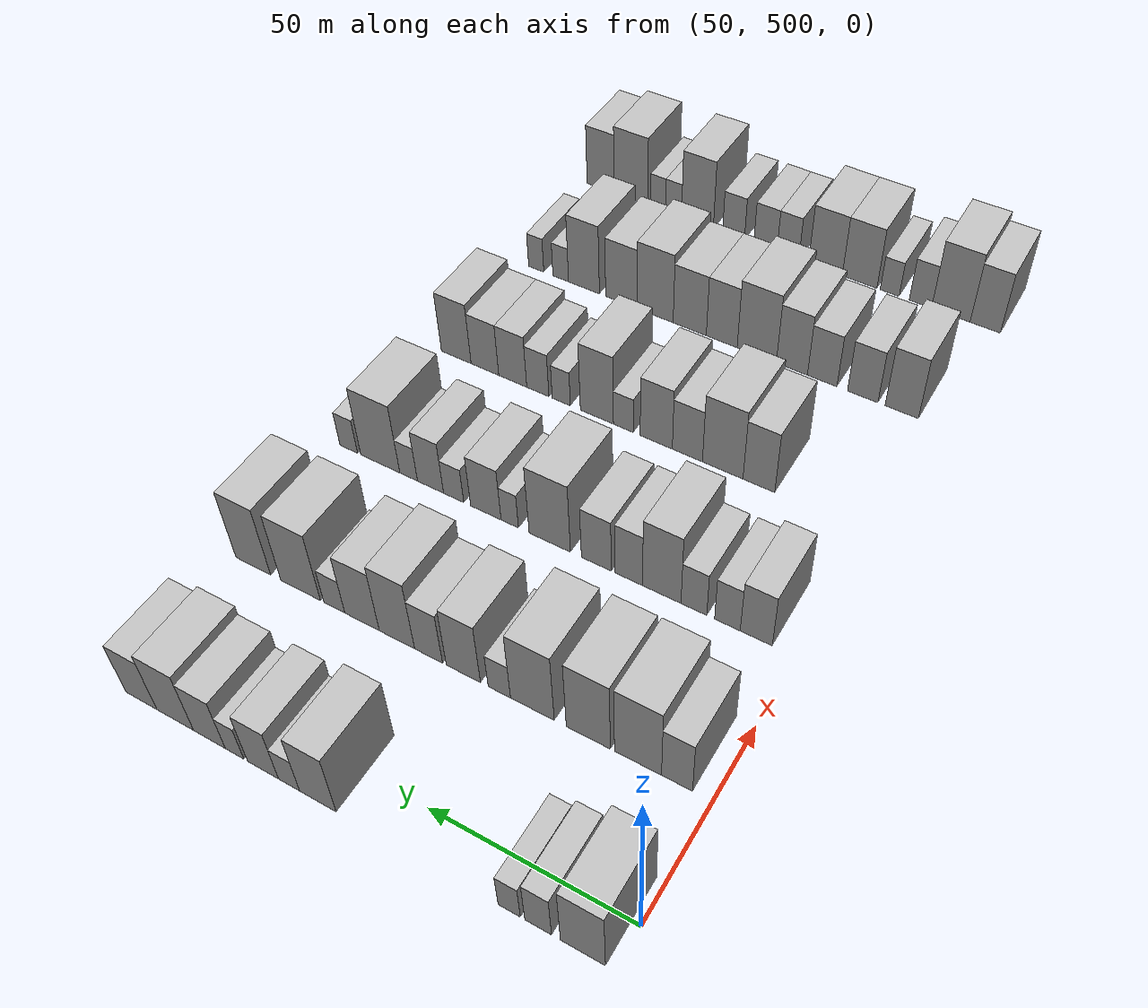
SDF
<sdf version="1.6">
 <world name="default">
  <model name="building_119">
   <static>1</static>
   <pose>50.0000 507.1689 0 0.000000 0.000000 0.000000</pose>
   <link name="link">
    <pose>0 0 10.50 0 0 0</pose>
    <collision name="collision"><geometry><box><size>20.0000 9.9891 21.0000</size></box></geometry></collision>
    <visual name="visual">
     <cast_shadows>0</cast_shadows>
     <geometry><box><size>20.0000 9.9891 21.0000</size></box></geometry>
     <material>
      <script>
       <uri>model://HANNAS_wall/materials/scripts</uri>
       <uri>model://HANNAS_wall/materials/textures</uri>
       <name>vrc/HANNAS_wall</name>
      </script>
     </material>
    </visual>
   </link>
  </model>
  <model name="building_120">
   <static>1</static>
   <pose>50.0000 517.1993 0 0.000000 0.000000 0.000000</pose>
   <link name="link">
    <pose>0 0 7.50 0 0 0</pose>
    <collision name="collision"><geometry><box><size>20.0000 6.0717 15.0000</size></box></geometry></collision>
    <visual name="visual">
     <cast_shadows>0</cast_shadows>
     <geometry><box><size>20.0000 6.0717 15.0000</size></box></geometry>
     <material>
      <script>
       <uri>model://HANNAS_wall/materials/scripts</uri>
       <uri>model://HANNAS_wall/materials/textures</uri>
       <name>vrc/HANNAS_wall</name>
      </script>
     </material>
    </visual>
   </link>
  </model>
  <model name="building_121">
   <static>1</static>
   <pose>50.0000 523.8039 0 0.000000 0.000000 0.000000</pose>
   <link name="link">
    <pose>0 0 6.00 0 0 0</pose>
    <collision name="collision"><geometry><box><size>20.0000 5.1374 12.0000</size></box></geometry></collision>
    <visual name="visual">
     <cast_shadows>0</cast_shadows>
     <geometry><box><size>20.0000 5.1374 12.0000</size></box></geometry>
     <material>
      <script>
       <uri>model://HANNAS_wall/materials/scripts</uri>
       <uri>model://HANNAS_wall/materials/textures</uri>
       <name>vrc/HANNAS_wall</name>
      </script>
     </material>
    </visual>
   </link>
  </model>
  <model name="building_122">
   <static>1</static>
   <pose>50.0000 570.4702 0 0.000000 0.000000 0.000000</pose>
   <link name="link">
    <pose>0 0 10.50 0 0 0</pose>
    <collision name="collision"><geometry><box><size>20.0000 9.3984 21.0000</size></box></geometry></collision>
    <visual name="visual">
     <cast_shadows>0</cast_shadows>
     <geometry><box><size>20.0000 9.3984 21.0000</size></box></geometry>
     <material>
      <script>
       <uri>model://HANNAS_wall/materials/scripts</uri>
       <uri>model://HANNAS_wall/materials/textures</uri>
       <name>vrc/HANNAS_wall</name>
      </script>
     </material>
    </visual>
   </link>
  </model>
  <model name="building_123">
   <static>1</static>
   <pose>50.0000 577.9317 0 0.000000 0.000000 0.000000</pose>
   <link name="link">
    <pose>0 0 6.00 0 0 0</pose>
    <collision name="collision"><geometry><box><size>20.0000 5.5246 12.0000</size></box></geometry></collision>
    <visual name="visual">
     <cast_shadows>0</cast_shadows>
     <geometry><box><size>20.0000 5.5246 12.0000</size></box></geometry>
     <material>
      <script>
       <uri>model://HANNAS_wall/materials/scripts</uri>
       <uri>model://HANNAS_wall/materials/textures</uri>
       <name>vrc/HANNAS_wall</name>
      </script>
     </material>
    </visual>
   </link>
  </model>
  <model name="building_124">
   <static>1</static>
   <pose>50.0000 584.7952 0 0.000000 0.000000 0.000000</pose>
   <link name="link">
    <pose>0 0 9.00 0 0 0</pose>
    <collision name="collision"><geometry><box><size>20.0000 8.2024 18.0000</size></box></geometry></collision>
    <visual name="visual">
     <cast_shadows>0</cast_shadows>
     <geometry><box><size>20.0000 8.2024 18.0000</size></box></geometry>
     <material>
      <script>
       <uri>model://HANNAS_wall/materials/scripts</uri>
       <uri>model://HANNAS_wall/materials/textures</uri>
       <name>vrc/HANNAS_wall</name>
      </script>
     </material>
    </visual>
   </link>
  </model>
  <model name="building_125">
   <static>1</static>
   <pose>50.0000 592.4026 0 0.000000 0.000000 0.000000</pose>
   <link name="link">
    <pose>0 0 6.00 0 0 0</pose>
    <collision name="collision"><geometry><box><size>20.0000 5.0125 12.0000</size></box></geometry></collision>
    <visual name="visual">
     <cast_shadows>0</cast_shadows>
     <geometry><box><size>20.0000 5.0125 12.0000</size></box></geometry>
     <material>
      <script>
       <uri>model://HANNAS_wall/materials/scripts</uri>
       <uri>model://HANNAS_wall/materials/textures</uri>
       <name>vrc/HANNAS_wall</name>
      </script>
     </material>
    </visual>
   </link>
  </model>
  <model name="building_126">
   <static>1</static>
   <pose>50.0000 599.2550 0 0.000000 0.000000 0.000000</pose>
   <link name="link">
    <pose>0 0 9.00 0 0 0</pose>
    <collision name="collision"><geometry><box><size>20.0000 8.6923 18.0000</size></box></geometry></collision>
    <visual name="visual">
     <cast_shadows>0</cast_shadows>
     <geometry><box><size>20.0000 8.6923 18.0000</size></box></geometry>
     <material>
      <script>
       <uri>model://HANNAS_wall/materials/scripts</uri>
       <uri>model://HANNAS_wall/materials/textures</uri>
       <name>vrc/HANNAS_wall</name>
      </script>
     </material>
    </visual>
   </link>
  </model>
  <model name="building_127">
   <static>1</static>
   <pose>50.0000 608.7537 0 0.000000 0.000000 0.000000</pose>
   <link name="link">
    <pose>0 0 10.50 0 0 0</pose>
    <collision name="collision"><geometry><box><size>20.0000 10.3051 21.0000</size></box></geometry></collision>
    <visual name="visual">
     <cast_shadows>0</cast_shadows>
     <geometry><box><size>20.0000 10.3051 21.0000</size></box></geometry>
     <material>
      <script>
       <uri>model://HANNAS_wall/materials/scripts</uri>
       <uri>model://HANNAS_wall/materials/textures</uri>
       <name>vrc/HANNAS_wall</name>
      </script>
     </material>
    </visual>
   </link>
  </model>
  <model name="building_128">
   <static>1</static>
   <pose>50.0000 618.3585 0 0.000000 0.000000 0.000000</pose>
   <link name="link">
    <pose>0 0 9.00 0 0 0</pose>
    <collision name="collision"><geometry><box><size>20.0000 8.9045 18.0000</size></box></geometry></collision>
    <visual name="visual">
     <cast_shadows>0</cast_shadows>
     <geometry><box><size>20.0000 8.9045 18.0000</size></box></geometry>
     <material>
      <script>
       <uri>model://HANNAS_wall/materials/scripts</uri>
       <uri>model://HANNAS_wall/materials/textures</uri>
       <name>vrc/HANNAS_wall</name>
      </script>
     </material>
    </visual>
   </link>
  </model>
  <model name="building_253">
   <static>1</static>
   <pose>90.0000 508.3896 0 0.000000 0.000000 0.000000</pose>
   <link name="link">
    <pose>0 0 9.00 0 0 0</pose>
    <collision name="collision"><geometry><box><size>20.0000 7.3123 18.0000</size></box></geometry></collision>
    <visual name="visual">
     <cast_shadows>0</cast_shadows>
     <geometry><box><size>20.0000 7.3123 18.0000</size></box></geometry>
     <material>
      <script>
       <uri>model://HANNAS_wall/materials/scripts</uri>
       <uri>model://HANNAS_wall/materials/textures</uri>
       <name>vrc/HANNAS_wall</name>
      </script>
     </material>
    </visual>
   </link>
  </model>
  <model name="building_254">
   <static>1</static>
   <pose>90.0000 517.6811 0 0.000000 0.000000 0.000000</pose>
   <link name="link">
    <pose>0 0 12.00 0 0 0</pose>
    <collision name="collision"><geometry><box><size>20.0000 11.2708 24.0000</size></box></geometry></collision>
    <visual name="visual">
     <cast_shadows>0</cast_shadows>
     <geometry><box><size>20.0000 11.2708 24.0000</size></box></geometry>
     <material>
      <script>
       <uri>model://HANNAS_wall/materials/scripts</uri>
       <uri>model://HANNAS_wall/materials/textures</uri>
       <name>vrc/HANNAS_wall</name>
      </script>
     </material>
    </visual>
   </link>
  </model>
  <model name="building_255">
   <static>1</static>
   <pose>90.0000 529.7607 0 0.000000 0.000000 0.000000</pose>
   <link name="link">
    <pose>0 0 12.00 0 0 0</pose>
    <collision name="collision"><geometry><box><size>20.0000 10.8884 24.0000</size></box></geometry></collision>
    <visual name="visual">
     <cast_shadows>0</cast_shadows>
     <geometry><box><size>20.0000 10.8884 24.0000</size></box></geometry>
     <material>
      <script>
       <uri>model://HANNAS_wall/materials/scripts</uri>
       <uri>model://HANNAS_wall/materials/textures</uri>
       <name>vrc/HANNAS_wall</name>
      </script>
     </material>
    </visual>
   </link>
  </model>
  <model name="building_256">
   <static>1</static>
   <pose>90.0000 543.7618 0 0.000000 0.000000 0.000000</pose>
   <link name="link">
    <pose>0 0 12.00 0 0 0</pose>
    <collision name="collision"><geometry><box><size>20.0000 11.1137 24.0000</size></box></geometry></collision>
    <visual name="visual">
     <cast_shadows>0</cast_shadows>
     <geometry><box><size>20.0000 11.1137 24.0000</size></box></geometry>
     <material>
      <script>
       <uri>model://HANNAS_wall/materials/scripts</uri>
       <uri>model://HANNAS_wall/materials/textures</uri>
       <name>vrc/HANNAS_wall</name>
      </script>
     </material>
    </visual>
   </link>
  </model>
  <model name="building_257">
   <static>1</static>
   <pose>90.0000 552.2125 0 0.000000 0.000000 0.000000</pose>
   <link name="link">
    <pose>0 0 6.00 0 0 0</pose>
    <collision name="collision"><geometry><box><size>20.0000 5.7877 12.0000</size></box></geometry></collision>
    <visual name="visual">
     <cast_shadows>0</cast_shadows>
     <geometry><box><size>20.0000 5.7877 12.0000</size></box></geometry>
     <material>
      <script>
       <uri>model://HANNAS_wall/materials/scripts</uri>
       <uri>model://HANNAS_wall/materials/textures</uri>
       <name>vrc/HANNAS_wall</name>
      </script>
     </material>
    </visual>
   </link>
  </model>
  <model name="building_258">
   <static>1</static>
   <pose>90.0000 561.6182 0 0.000000 0.000000 0.000000</pose>
   <link name="link">
    <pose>0 0 10.50 0 0 0</pose>
    <collision name="collision"><geometry><box><size>20.0000 9.0238 21.0000</size></box></geometry></collision>
    <visual name="visual">
     <cast_shadows>0</cast_shadows>
     <geometry><box><size>20.0000 9.0238 21.0000</size></box></geometry>
     <material>
      <script>
       <uri>model://HANNAS_wall/materials/scripts</uri>
       <uri>model://HANNAS_wall/materials/textures</uri>
       <name>vrc/HANNAS_wall</name>
      </script>
     </material>
    </visual>
   </link>
  </model>
  <model name="building_259">
   <static>1</static>
   <pose>90.0000 570.8936 0 0.000000 0.000000 0.000000</pose>
   <link name="link">
    <pose>0 0 9.00 0 0 0</pose>
    <collision name="collision"><geometry><box><size>20.0000 7.5270 18.0000</size></box></geometry></collision>
    <visual name="visual">
     <cast_shadows>0</cast_shadows>
     <geometry><box><size>20.0000 7.5270 18.0000</size></box></geometry>
     <material>
      <script>
       <uri>model://HANNAS_wall/materials/scripts</uri>
       <uri>model://HANNAS_wall/materials/textures</uri>
       <name>vrc/HANNAS_wall</name>
      </script>
     </material>
    </visual>
   </link>
  </model>
  <model name="building_260">
   <static>1</static>
   <pose>90.0000 579.4934 0 0.000000 0.000000 0.000000</pose>
   <link name="link">
    <pose>0 0 12.00 0 0 0</pose>
    <collision name="collision"><geometry><box><size>20.0000 9.6727 24.0000</size></box></geometry></collision>
    <visual name="visual">
     <cast_shadows>0</cast_shadows>
     <geometry><box><size>20.0000 9.6727 24.0000</size></box></geometry>
     <material>
      <script>
       <uri>model://HANNAS_wall/materials/scripts</uri>
       <uri>model://HANNAS_wall/materials/textures</uri>
       <name>vrc/HANNAS_wall</name>
      </script>
     </material>
    </visual>
   </link>
  </model>
  <model name="building_261">
   <static>1</static>
   <pose>90.0000 589.1586 0 0.000000 0.000000 0.000000</pose>
   <link name="link">
    <pose>0 0 10.50 0 0 0</pose>
    <collision name="collision"><geometry><box><size>20.0000 9.6575 21.0000</size></box></geometry></collision>
    <visual name="visual">
     <cast_shadows>0</cast_shadows>
     <geometry><box><size>20.0000 9.6575 21.0000</size></box></geometry>
     <material>
      <script>
       <uri>model://HANNAS_wall/materials/scripts</uri>
       <uri>model://HANNAS_wall/materials/textures</uri>
       <name>vrc/HANNAS_wall</name>
      </script>
     </material>
    </visual>
   </link>
  </model>
  <model name="building_262">
   <static>1</static>
   <pose>90.0000 596.9618 0 0.000000 0.000000 0.000000</pose>
   <link name="link">
    <pose>0 0 6.00 0 0 0</pose>
    <collision name="collision"><geometry><box><size>20.0000 5.9489 12.0000</size></box></geometry></collision>
    <visual name="visual">
     <cast_shadows>0</cast_shadows>
     <geometry><box><size>20.0000 5.9489 12.0000</size></box></geometry>
     <material>
      <script>
       <uri>model://HANNAS_wall/materials/scripts</uri>
       <uri>model://HANNAS_wall/materials/textures</uri>
       <name>vrc/HANNAS_wall</name>
      </script>
     </material>
    </visual>
   </link>
  </model>
  <model name="building_263">
   <static>1</static>
   <pose>90.0000 606.6613 0 0.000000 0.000000 0.000000</pose>
   <link name="link">
    <pose>0 0 12.00 0 0 0</pose>
    <collision name="collision"><geometry><box><size>20.0000 11.4503 24.0000</size></box></geometry></collision>
    <visual name="visual">
     <cast_shadows>0</cast_shadows>
     <geometry><box><size>20.0000 11.4503 24.0000</size></box></geometry>
     <material>
      <script>
       <uri>model://HANNAS_wall/materials/scripts</uri>
       <uri>model://HANNAS_wall/materials/textures</uri>
       <name>vrc/HANNAS_wall</name>
      </script>
     </material>
    </visual>
   </link>
  </model>
  <model name="building_264">
   <static>1</static>
   <pose>90.0000 620.5556 0 0.000000 0.000000 0.000000</pose>
   <link name="link">
    <pose>0 0 12.00 0 0 0</pose>
    <collision name="collision"><geometry><box><size>20.0000 10.3382 24.0000</size></box></geometry></collision>
    <visual name="visual">
     <cast_shadows>0</cast_shadows>
     <geometry><box><size>20.0000 10.3382 24.0000</size></box></geometry>
     <material>
      <script>
       <uri>model://HANNAS_wall/materials/scripts</uri>
       <uri>model://HANNAS_wall/materials/textures</uri>
       <name>vrc/HANNAS_wall</name>
      </script>
     </material>
    </visual>
   </link>
  </model>
  <model name="building_385">
   <static>1</static>
   <pose>130.0000 509.8401 0 0.000000 0.000000 0.000000</pose>
   <link name="link">
    <pose>0 0 9.00 0 0 0</pose>
    <collision name="collision"><geometry><box><size>20.0000 7.9883 18.0000</size></box></geometry></collision>
    <visual name="visual">
     <cast_shadows>0</cast_shadows>
     <geometry><box><size>20.0000 7.9883 18.0000</size></box></geometry>
     <material>
      <script>
       <uri>model://HANNAS_wall/materials/scripts</uri>
       <uri>model://HANNAS_wall/materials/textures</uri>
       <name>vrc/HANNAS_wall</name>
      </script>
     </material>
    </visual>
   </link>
  </model>
  <model name="building_386">
   <static>1</static>
   <pose>130.0000 517.0669 0 0.000000 0.000000 0.000000</pose>
   <link name="link">
    <pose>0 0 7.50 0 0 0</pose>
    <collision name="collision"><geometry><box><size>20.0000 6.4651 15.0000</size></box></geometry></collision>
    <visual name="visual">
     <cast_shadows>0</cast_shadows>
     <geometry><box><size>20.0000 6.4651 15.0000</size></box></geometry>
     <material>
      <script>
       <uri>model://HANNAS_wall/materials/scripts</uri>
       <uri>model://HANNAS_wall/materials/textures</uri>
       <name>vrc/HANNAS_wall</name>
      </script>
     </material>
    </visual>
   </link>
  </model>
  <model name="building_387">
   <static>1</static>
   <pose>130.0000 525.6155 0 0.000000 0.000000 0.000000</pose>
   <link name="link">
    <pose>0 0 7.50 0 0 0</pose>
    <collision name="collision"><geometry><box><size>20.0000 6.6322 15.0000</size></box></geometry></collision>
    <visual name="visual">
     <cast_shadows>0</cast_shadows>
     <geometry><box><size>20.0000 6.6322 15.0000</size></box></geometry>
     <material>
      <script>
       <uri>model://HANNAS_wall/materials/scripts</uri>
       <uri>model://HANNAS_wall/materials/textures</uri>
       <name>vrc/HANNAS_wall</name>
      </script>
     </material>
    </visual>
   </link>
  </model>
  <model name="building_388">
   <static>1</static>
   <pose>130.0000 533.9509 0 0.000000 0.000000 0.000000</pose>
   <link name="link">
    <pose>0 0 12.00 0 0 0</pose>
    <collision name="collision"><geometry><box><size>20.0000 10.0386 24.0000</size></box></geometry></collision>
    <visual name="visual">
     <cast_shadows>0</cast_shadows>
     <geometry><box><size>20.0000 10.0386 24.0000</size></box></geometry>
     <material>
      <script>
       <uri>model://HANNAS_wall/materials/scripts</uri>
       <uri>model://HANNAS_wall/materials/textures</uri>
       <name>vrc/HANNAS_wall</name>
      </script>
     </material>
    </visual>
   </link>
  </model>
  <model name="building_389">
   <static>1</static>
   <pose>130.0000 542.6285 0 0.000000 0.000000 0.000000</pose>
   <link name="link">
    <pose>0 0 9.00 0 0 0</pose>
    <collision name="collision"><geometry><box><size>20.0000 7.3164 18.0000</size></box></geometry></collision>
    <visual name="visual">
     <cast_shadows>0</cast_shadows>
     <geometry><box><size>20.0000 7.3164 18.0000</size></box></geometry>
     <material>
      <script>
       <uri>model://HANNAS_wall/materials/scripts</uri>
       <uri>model://HANNAS_wall/materials/textures</uri>
       <name>vrc/HANNAS_wall</name>
      </script>
     </material>
    </visual>
   </link>
  </model>
  <model name="building_390">
   <static>1</static>
   <pose>130.0000 551.3390 0 0.000000 0.000000 0.000000</pose>
   <link name="link">
    <pose>0 0 9.00 0 0 0</pose>
    <collision name="collision"><geometry><box><size>20.0000 8.1047 18.0000</size></box></geometry></collision>
    <visual name="visual">
     <cast_shadows>0</cast_shadows>
     <geometry><box><size>20.0000 8.1047 18.0000</size></box></geometry>
     <material>
      <script>
       <uri>model://HANNAS_wall/materials/scripts</uri>
       <uri>model://HANNAS_wall/materials/textures</uri>
       <name>vrc/HANNAS_wall</name>
      </script>
     </material>
    </visual>
   </link>
  </model>
  <model name="building_391">
   <static>1</static>
   <pose>130.0000 564.1221 0 0.000000 0.000000 0.000000</pose>
   <link name="link">
    <pose>0 0 12.00 0 0 0</pose>
    <collision name="collision"><geometry><box><size>20.0000 11.4614 24.0000</size></box></geometry></collision>
    <visual name="visual">
     <cast_shadows>0</cast_shadows>
     <geometry><box><size>20.0000 11.4614 24.0000</size></box></geometry>
     <material>
      <script>
       <uri>model://HANNAS_wall/materials/scripts</uri>
       <uri>model://HANNAS_wall/materials/textures</uri>
       <name>vrc/HANNAS_wall</name>
      </script>
     </material>
    </visual>
   </link>
  </model>
  <model name="building_392">
   <static>1</static>
   <pose>130.0000 575.3260 0 0.000000 0.000000 0.000000</pose>
   <link name="link">
    <pose>0 0 6.00 0 0 0</pose>
    <collision name="collision"><geometry><box><size>20.0000 4.9465 12.0000</size></box></geometry></collision>
    <visual name="visual">
     <cast_shadows>0</cast_shadows>
     <geometry><box><size>20.0000 4.9465 12.0000</size></box></geometry>
     <material>
      <script>
       <uri>model://HANNAS_wall/materials/scripts</uri>
       <uri>model://HANNAS_wall/materials/textures</uri>
       <name>vrc/HANNAS_wall</name>
      </script>
     </material>
    </visual>
   </link>
  </model>
  <model name="building_393">
   <static>1</static>
   <pose>130.0000 582.1688 0 0.000000 0.000000 0.000000</pose>
   <link name="link">
    <pose>0 0 9.00 0 0 0</pose>
    <collision name="collision"><geometry><box><size>20.0000 8.7391 18.0000</size></box></geometry></collision>
    <visual name="visual">
     <cast_shadows>0</cast_shadows>
     <geometry><box><size>20.0000 8.7391 18.0000</size></box></geometry>
     <material>
      <script>
       <uri>model://HANNAS_wall/materials/scripts</uri>
       <uri>model://HANNAS_wall/materials/textures</uri>
       <name>vrc/HANNAS_wall</name>
      </script>
     </material>
    </visual>
   </link>
  </model>
  <model name="building_394">
   <static>1</static>
   <pose>130.0000 591.4998 0 0.000000 0.000000 0.000000</pose>
   <link name="link">
    <pose>0 0 6.00 0 0 0</pose>
    <collision name="collision"><geometry><box><size>20.0000 5.9229 12.0000</size></box></geometry></collision>
    <visual name="visual">
     <cast_shadows>0</cast_shadows>
     <geometry><box><size>20.0000 5.9229 12.0000</size></box></geometry>
     <material>
      <script>
       <uri>model://HANNAS_wall/materials/scripts</uri>
       <uri>model://HANNAS_wall/materials/textures</uri>
       <name>vrc/HANNAS_wall</name>
      </script>
     </material>
    </visual>
   </link>
  </model>
  <model name="building_395">
   <static>1</static>
   <pose>130.0000 598.3285 0 0.000000 0.000000 0.000000</pose>
   <link name="link">
    <pose>0 0 9.00 0 0 0</pose>
    <collision name="collision"><geometry><box><size>20.0000 7.7344 18.0000</size></box></geometry></collision>
    <visual name="visual">
     <cast_shadows>0</cast_shadows>
     <geometry><box><size>20.0000 7.7344 18.0000</size></box></geometry>
     <material>
      <script>
       <uri>model://HANNAS_wall/materials/scripts</uri>
       <uri>model://HANNAS_wall/materials/textures</uri>
       <name>vrc/HANNAS_wall</name>
      </script>
     </material>
    </visual>
   </link>
  </model>
  <model name="building_396">
   <static>1</static>
   <pose>130.0000 604.8549 0 0.000000 0.000000 0.000000</pose>
   <link name="link">
    <pose>0 0 6.00 0 0 0</pose>
    <collision name="collision"><geometry><box><size>20.0000 5.3186 12.0000</size></box></geometry></collision>
    <visual name="visual">
     <cast_shadows>0</cast_shadows>
     <geometry><box><size>20.0000 5.3186 12.0000</size></box></geometry>
     <material>
      <script>
       <uri>model://HANNAS_wall/materials/scripts</uri>
       <uri>model://HANNAS_wall/materials/textures</uri>
       <name>vrc/HANNAS_wall</name>
      </script>
     </material>
    </visual>
   </link>
  </model>
  <model name="building_397">
   <static>1</static>
   <pose>130.0000 613.4693 0 0.000000 0.000000 0.000000</pose>
   <link name="link">
    <pose>0 0 12.00 0 0 0</pose>
    <collision name="collision"><geometry><box><size>20.0000 11.9101 24.0000</size></box></geometry></collision>
    <visual name="visual">
     <cast_shadows>0</cast_shadows>
     <geometry><box><size>20.0000 11.9101 24.0000</size></box></geometry>
     <material>
      <script>
       <uri>model://HANNAS_wall/materials/scripts</uri>
       <uri>model://HANNAS_wall/materials/textures</uri>
       <name>vrc/HANNAS_wall</name>
      </script>
     </material>
    </visual>
   </link>
  </model>
  <model name="building_398">
   <static>1</static>
   <pose>130.0000 623.1546 0 0.000000 0.000000 0.000000</pose>
   <link name="link">
    <pose>0 0 6.00 0 0 0</pose>
    <collision name="collision"><geometry><box><size>20.0000 5.4606 12.0000</size></box></geometry></collision>
    <visual name="visual">
     <cast_shadows>0</cast_shadows>
     <geometry><box><size>20.0000 5.4606 12.0000</size></box></geometry>
     <material>
      <script>
       <uri>model://HANNAS_wall/materials/scripts</uri>
       <uri>model://HANNAS_wall/materials/textures</uri>
       <name>vrc/HANNAS_wall</name>
      </script>
     </material>
    </visual>
   </link>
  </model>
  <model name="building_519">
   <static>1</static>
   <pose>170.0000 528.8280 0 0.000000 0.000000 0.000000</pose>
   <link name="link">
    <pose>0 0 10.50 0 0 0</pose>
    <collision name="collision"><geometry><box><size>20.0000 8.6506 21.0000</size></box></geometry></collision>
    <visual name="visual">
     <cast_shadows>0</cast_shadows>
     <geometry><box><size>20.0000 8.6506 21.0000</size></box></geometry>
     <material>
      <script>
       <uri>model://HANNAS_wall/materials/scripts</uri>
       <uri>model://HANNAS_wall/materials/textures</uri>
       <name>vrc/HANNAS_wall</name>
      </script>
     </material>
    </visual>
   </link>
  </model>
  <model name="building_520">
   <static>1</static>
   <pose>170.0000 538.7659 0 0.000000 0.000000 0.000000</pose>
   <link name="link">
    <pose>0 0 12.00 0 0 0</pose>
    <collision name="collision"><geometry><box><size>20.0000 11.2251 24.0000</size></box></geometry></collision>
    <visual name="visual">
     <cast_shadows>0</cast_shadows>
     <geometry><box><size>20.0000 11.2251 24.0000</size></box></geometry>
     <material>
      <script>
       <uri>model://HANNAS_wall/materials/scripts</uri>
       <uri>model://HANNAS_wall/materials/textures</uri>
       <name>vrc/HANNAS_wall</name>
      </script>
     </material>
    </visual>
   </link>
  </model>
  <model name="building_521">
   <static>1</static>
   <pose>170.0000 548.6201 0 0.000000 0.000000 0.000000</pose>
   <link name="link">
    <pose>0 0 9.00 0 0 0</pose>
    <collision name="collision"><geometry><box><size>20.0000 8.4832 18.0000</size></box></geometry></collision>
    <visual name="visual">
     <cast_shadows>0</cast_shadows>
     <geometry><box><size>20.0000 8.4832 18.0000</size></box></geometry>
     <material>
      <script>
       <uri>model://HANNAS_wall/materials/scripts</uri>
       <uri>model://HANNAS_wall/materials/textures</uri>
       <name>vrc/HANNAS_wall</name>
      </script>
     </material>
    </visual>
   </link>
  </model>
  <model name="building_522">
   <static>1</static>
   <pose>170.0000 557.4695 0 0.000000 0.000000 0.000000</pose>
   <link name="link">
    <pose>0 0 10.50 0 0 0</pose>
    <collision name="collision"><geometry><box><size>20.0000 9.2157 21.0000</size></box></geometry></collision>
    <visual name="visual">
     <cast_shadows>0</cast_shadows>
     <geometry><box><size>20.0000 9.2157 21.0000</size></box></geometry>
     <material>
      <script>
       <uri>model://HANNAS_wall/materials/scripts</uri>
       <uri>model://HANNAS_wall/materials/textures</uri>
       <name>vrc/HANNAS_wall</name>
      </script>
     </material>
    </visual>
   </link>
  </model>
  <model name="building_523">
   <static>1</static>
   <pose>170.0000 566.9719 0 0.000000 0.000000 0.000000</pose>
   <link name="link">
    <pose>0 0 6.00 0 0 0</pose>
    <collision name="collision"><geometry><box><size>20.0000 5.7891 12.0000</size></box></geometry></collision>
    <visual name="visual">
     <cast_shadows>0</cast_shadows>
     <geometry><box><size>20.0000 5.7891 12.0000</size></box></geometry>
     <material>
      <script>
       <uri>model://HANNAS_wall/materials/scripts</uri>
       <uri>model://HANNAS_wall/materials/textures</uri>
       <name>vrc/HANNAS_wall</name>
      </script>
     </material>
    </visual>
   </link>
  </model>
  <model name="building_524">
   <static>1</static>
   <pose>170.0000 574.7589 0 0.000000 0.000000 0.000000</pose>
   <link name="link">
    <pose>0 0 12.00 0 0 0</pose>
    <collision name="collision"><geometry><box><size>20.0000 9.7848 24.0000</size></box></geometry></collision>
    <visual name="visual">
     <cast_shadows>0</cast_shadows>
     <geometry><box><size>20.0000 9.7848 24.0000</size></box></geometry>
     <material>
      <script>
       <uri>model://HANNAS_wall/materials/scripts</uri>
       <uri>model://HANNAS_wall/materials/textures</uri>
       <name>vrc/HANNAS_wall</name>
      </script>
     </material>
    </visual>
   </link>
  </model>
  <model name="building_525">
   <static>1</static>
   <pose>170.0000 585.3851 0 0.000000 0.000000 0.000000</pose>
   <link name="link">
    <pose>0 0 6.00 0 0 0</pose>
    <collision name="collision"><geometry><box><size>20.0000 5.4677 12.0000</size></box></geometry></collision>
    <visual name="visual">
     <cast_shadows>0</cast_shadows>
     <geometry><box><size>20.0000 5.4677 12.0000</size></box></geometry>
     <material>
      <script>
       <uri>model://HANNAS_wall/materials/scripts</uri>
       <uri>model://HANNAS_wall/materials/textures</uri>
       <name>vrc/HANNAS_wall</name>
      </script>
     </material>
    </visual>
   </link>
  </model>
  <model name="building_526">
   <static>1</static>
   <pose>170.0000 592.5064 0 0.000000 0.000000 0.000000</pose>
   <link name="link">
    <pose>0 0 7.50 0 0 0</pose>
    <collision name="collision"><geometry><box><size>20.0000 6.7749 15.0000</size></box></geometry></collision>
    <visual name="visual">
     <cast_shadows>0</cast_shadows>
     <geometry><box><size>20.0000 6.7749 15.0000</size></box></geometry>
     <material>
      <script>
       <uri>model://HANNAS_wall/materials/scripts</uri>
       <uri>model://HANNAS_wall/materials/textures</uri>
       <name>vrc/HANNAS_wall</name>
      </script>
     </material>
    </visual>
   </link>
  </model>
  <model name="building_527">
   <static>1</static>
   <pose>170.0000 600.2312 0 0.000000 0.000000 0.000000</pose>
   <link name="link">
    <pose>0 0 9.00 0 0 0</pose>
    <collision name="collision"><geometry><box><size>20.0000 8.6747 18.0000</size></box></geometry></collision>
    <visual name="visual">
     <cast_shadows>0</cast_shadows>
     <geometry><box><size>20.0000 8.6747 18.0000</size></box></geometry>
     <material>
      <script>
       <uri>model://HANNAS_wall/materials/scripts</uri>
       <uri>model://HANNAS_wall/materials/textures</uri>
       <name>vrc/HANNAS_wall</name>
      </script>
     </material>
    </visual>
   </link>
  </model>
  <model name="building_528">
   <static>1</static>
   <pose>170.0000 608.9223 0 0.000000 0.000000 0.000000</pose>
   <link name="link">
    <pose>0 0 9.00 0 0 0</pose>
    <collision name="collision"><geometry><box><size>20.0000 8.7077 18.0000</size></box></geometry></collision>
    <visual name="visual">
     <cast_shadows>0</cast_shadows>
     <geometry><box><size>20.0000 8.7077 18.0000</size></box></geometry>
     <material>
      <script>
       <uri>model://HANNAS_wall/materials/scripts</uri>
       <uri>model://HANNAS_wall/materials/textures</uri>
       <name>vrc/HANNAS_wall</name>
      </script>
     </material>
    </visual>
   </link>
  </model>
  <model name="building_529">
   <static>1</static>
   <pose>170.0000 618.0169 0 0.000000 0.000000 0.000000</pose>
   <link name="link">
    <pose>0 0 10.50 0 0 0</pose>
    <collision name="collision"><geometry><box><size>20.0000 9.4814 21.0000</size></box></geometry></collision>
    <visual name="visual">
     <cast_shadows>0</cast_shadows>
     <geometry><box><size>20.0000 9.4814 21.0000</size></box></geometry>
     <material>
      <script>
       <uri>model://HANNAS_wall/materials/scripts</uri>
       <uri>model://HANNAS_wall/materials/textures</uri>
       <name>vrc/HANNAS_wall</name>
      </script>
     </material>
    </visual>
   </link>
  </model>
  <model name="building_660">
   <static>1</static>
   <pose>210.0000 507.7835 0 0.000000 0.000000 0.000000</pose>
   <link name="link">
    <pose>0 0 10.50 0 0 0</pose>
    <collision name="collision"><geometry><box><size>20.0000 9.1531 21.0000</size></box></geometry></collision>
    <visual name="visual">
     <cast_shadows>0</cast_shadows>
     <geometry><box><size>20.0000 9.1531 21.0000</size></box></geometry>
     <material>
      <script>
       <uri>model://HANNAS_wall/materials/scripts</uri>
       <uri>model://HANNAS_wall/materials/textures</uri>
       <name>vrc/HANNAS_wall</name>
      </script>
     </material>
    </visual>
   </link>
  </model>
  <model name="building_661">
   <static>1</static>
   <pose>210.0000 518.6119 0 0.000000 0.000000 0.000000</pose>
   <link name="link">
    <pose>0 0 9.00 0 0 0</pose>
    <collision name="collision"><geometry><box><size>20.0000 8.5037 18.0000</size></box></geometry></collision>
    <visual name="visual">
     <cast_shadows>0</cast_shadows>
     <geometry><box><size>20.0000 8.5037 18.0000</size></box></geometry>
     <material>
      <script>
       <uri>model://HANNAS_wall/materials/scripts</uri>
       <uri>model://HANNAS_wall/materials/textures</uri>
       <name>vrc/HANNAS_wall</name>
      </script>
     </material>
    </visual>
   </link>
  </model>
  <model name="building_662">
   <static>1</static>
   <pose>210.0000 530.0832 0 0.000000 0.000000 0.000000</pose>
   <link name="link">
    <pose>0 0 9.00 0 0 0</pose>
    <collision name="collision"><geometry><box><size>20.0000 8.4389 18.0000</size></box></geometry></collision>
    <visual name="visual">
     <cast_shadows>0</cast_shadows>
     <geometry><box><size>20.0000 8.4389 18.0000</size></box></geometry>
     <material>
      <script>
       <uri>model://HANNAS_wall/materials/scripts</uri>
       <uri>model://HANNAS_wall/materials/textures</uri>
       <name>vrc/HANNAS_wall</name>
      </script>
     </material>
    </visual>
   </link>
  </model>
  <model name="building_663">
   <static>1</static>
   <pose>210.0000 538.8134 0 0.000000 0.000000 0.000000</pose>
   <link name="link">
    <pose>0 0 10.50 0 0 0</pose>
    <collision name="collision"><geometry><box><size>20.0000 9.0216 21.0000</size></box></geometry></collision>
    <visual name="visual">
     <cast_shadows>0</cast_shadows>
     <geometry><box><size>20.0000 9.0216 21.0000</size></box></geometry>
     <material>
      <script>
       <uri>model://HANNAS_wall/materials/scripts</uri>
       <uri>model://HANNAS_wall/materials/textures</uri>
       <name>vrc/HANNAS_wall</name>
      </script>
     </material>
    </visual>
   </link>
  </model>
  <model name="building_664">
   <static>1</static>
   <pose>210.0000 549.1095 0 0.000000 0.000000 0.000000</pose>
   <link name="link">
    <pose>0 0 12.00 0 0 0</pose>
    <collision name="collision"><geometry><box><size>20.0000 11.5706 24.0000</size></box></geometry></collision>
    <visual name="visual">
     <cast_shadows>0</cast_shadows>
     <geometry><box><size>20.0000 11.5706 24.0000</size></box></geometry>
     <material>
      <script>
       <uri>model://HANNAS_wall/materials/scripts</uri>
       <uri>model://HANNAS_wall/materials/textures</uri>
       <name>vrc/HANNAS_wall</name>
      </script>
     </material>
    </visual>
   </link>
  </model>
  <model name="building_665">
   <static>1</static>
   <pose>210.0000 559.5309 0 0.000000 0.000000 0.000000</pose>
   <link name="link">
    <pose>0 0 10.50 0 0 0</pose>
    <collision name="collision"><geometry><box><size>20.0000 9.2723 21.0000</size></box></geometry></collision>
    <visual name="visual">
     <cast_shadows>0</cast_shadows>
     <geometry><box><size>20.0000 9.2723 21.0000</size></box></geometry>
     <material>
      <script>
       <uri>model://HANNAS_wall/materials/scripts</uri>
       <uri>model://HANNAS_wall/materials/textures</uri>
       <name>vrc/HANNAS_wall</name>
      </script>
     </material>
    </visual>
   </link>
  </model>
  <model name="building_666">
   <static>1</static>
   <pose>210.0000 569.2351 0 0.000000 0.000000 0.000000</pose>
   <link name="link">
    <pose>0 0 10.50 0 0 0</pose>
    <collision name="collision"><geometry><box><size>20.0000 10.1360 21.0000</size></box></geometry></collision>
    <visual name="visual">
     <cast_shadows>0</cast_shadows>
     <geometry><box><size>20.0000 10.1360 21.0000</size></box></geometry>
     <material>
      <script>
       <uri>model://HANNAS_wall/materials/scripts</uri>
       <uri>model://HANNAS_wall/materials/textures</uri>
       <name>vrc/HANNAS_wall</name>
      </script>
     </material>
    </visual>
   </link>
  </model>
  <model name="building_667">
   <static>1</static>
   <pose>210.0000 579.9144 0 0.000000 0.000000 0.000000</pose>
   <link name="link">
    <pose>0 0 12.00 0 0 0</pose>
    <collision name="collision"><geometry><box><size>20.0000 11.2226 24.0000</size></box></geometry></collision>
    <visual name="visual">
     <cast_shadows>0</cast_shadows>
     <geometry><box><size>20.0000 11.2226 24.0000</size></box></geometry>
     <material>
      <script>
       <uri>model://HANNAS_wall/materials/scripts</uri>
       <uri>model://HANNAS_wall/materials/textures</uri>
       <name>vrc/HANNAS_wall</name>
      </script>
     </material>
    </visual>
   </link>
  </model>
  <model name="building_668">
   <static>1</static>
   <pose>210.0000 590.5078 0 0.000000 0.000000 0.000000</pose>
   <link name="link">
    <pose>0 0 10.50 0 0 0</pose>
    <collision name="collision"><geometry><box><size>20.0000 9.9642 21.0000</size></box></geometry></collision>
    <visual name="visual">
     <cast_shadows>0</cast_shadows>
     <geometry><box><size>20.0000 9.9642 21.0000</size></box></geometry>
     <material>
      <script>
       <uri>model://HANNAS_wall/materials/scripts</uri>
       <uri>model://HANNAS_wall/materials/textures</uri>
       <name>vrc/HANNAS_wall</name>
      </script>
     </material>
    </visual>
   </link>
  </model>
  <model name="building_669">
   <static>1</static>
   <pose>210.0000 602.4848 0 0.000000 0.000000 0.000000</pose>
   <link name="link">
    <pose>0 0 12.00 0 0 0</pose>
    <collision name="collision"><geometry><box><size>20.0000 9.9899 24.0000</size></box></geometry></collision>
    <visual name="visual">
     <cast_shadows>0</cast_shadows>
     <geometry><box><size>20.0000 9.9899 24.0000</size></box></geometry>
     <material>
      <script>
       <uri>model://HANNAS_wall/materials/scripts</uri>
       <uri>model://HANNAS_wall/materials/textures</uri>
       <name>vrc/HANNAS_wall</name>
      </script>
     </material>
    </visual>
   </link>
  </model>
  <model name="building_670">
   <static>1</static>
   <pose>210.0000 610.0427 0 0.000000 0.000000 0.000000</pose>
   <link name="link">
    <pose>0 0 6.00 0 0 0</pose>
    <collision name="collision"><geometry><box><size>20.0000 5.1260 12.0000</size></box></geometry></collision>
    <visual name="visual">
     <cast_shadows>0</cast_shadows>
     <geometry><box><size>20.0000 5.1260 12.0000</size></box></geometry>
     <material>
      <script>
       <uri>model://HANNAS_wall/materials/scripts</uri>
       <uri>model://HANNAS_wall/materials/textures</uri>
       <name>vrc/HANNAS_wall</name>
      </script>
     </material>
    </visual>
   </link>
  </model>
  <model name="building_671">
   <static>1</static>
   <pose>210.0000 618.1145 0 0.000000 0.000000 0.000000</pose>
   <link name="link">
    <pose>0 0 6.00 0 0 0</pose>
    <collision name="collision"><geometry><box><size>20.0000 5.0175 12.0000</size></box></geometry></collision>
    <visual name="visual">
     <cast_shadows>0</cast_shadows>
     <geometry><box><size>20.0000 5.0175 12.0000</size></box></geometry>
     <material>
      <script>
       <uri>model://HANNAS_wall/materials/scripts</uri>
       <uri>model://HANNAS_wall/materials/textures</uri>
       <name>vrc/HANNAS_wall</name>
      </script>
     </material>
    </visual>
   </link>
  </model>
  <model name="building_797">
   <static>1</static>
   <pose>250.0000 500.0163 0 0.000000 0.000000 0.000000</pose>
   <link name="link">
    <pose>0 0 10.50 0 0 0</pose>
    <collision name="collision"><geometry><box><size>20.0000 8.6097 21.0000</size></box></geometry></collision>
    <visual name="visual">
     <cast_shadows>0</cast_shadows>
     <geometry><box><size>20.0000 8.6097 21.0000</size></box></geometry>
     <material>
      <script>
       <uri>model://HANNAS_wall/materials/scripts</uri>
       <uri>model://HANNAS_wall/materials/textures</uri>
       <name>vrc/HANNAS_wall</name>
      </script>
     </material>
    </visual>
   </link>
  </model>
  <model name="building_798">
   <static>1</static>
   <pose>250.0000 509.8877 0 0.000000 0.000000 0.000000</pose>
   <link name="link">
    <pose>0 0 12.00 0 0 0</pose>
    <collision name="collision"><geometry><box><size>20.0000 11.1330 24.0000</size></box></geometry></collision>
    <visual name="visual">
     <cast_shadows>0</cast_shadows>
     <geometry><box><size>20.0000 11.1330 24.0000</size></box></geometry>
     <material>
      <script>
       <uri>model://HANNAS_wall/materials/scripts</uri>
       <uri>model://HANNAS_wall/materials/textures</uri>
       <name>vrc/HANNAS_wall</name>
      </script>
     </material>
    </visual>
   </link>
  </model>
  <model name="building_799">
   <static>1</static>
   <pose>250.0000 518.7159 0 0.000000 0.000000 0.000000</pose>
   <link name="link">
    <pose>0 0 7.50 0 0 0</pose>
    <collision name="collision"><geometry><box><size>20.0000 6.5234 15.0000</size></box></geometry></collision>
    <visual name="visual">
     <cast_shadows>0</cast_shadows>
     <geometry><box><size>20.0000 6.5234 15.0000</size></box></geometry>
     <material>
      <script>
       <uri>model://HANNAS_wall/materials/scripts</uri>
       <uri>model://HANNAS_wall/materials/textures</uri>
       <name>vrc/HANNAS_wall</name>
      </script>
     </material>
    </visual>
   </link>
  </model>
  <model name="building_800">
   <static>1</static>
   <pose>250.0000 527.7980 0 0.000000 0.000000 0.000000</pose>
   <link name="link">
    <pose>0 0 6.00 0 0 0</pose>
    <collision name="collision"><geometry><box><size>20.0000 5.6410 12.0000</size></box></geometry></collision>
    <visual name="visual">
     <cast_shadows>0</cast_shadows>
     <geometry><box><size>20.0000 5.6410 12.0000</size></box></geometry>
     <material>
      <script>
       <uri>model://HANNAS_wall/materials/scripts</uri>
       <uri>model://HANNAS_wall/materials/textures</uri>
       <name>vrc/HANNAS_wall</name>
      </script>
     </material>
    </visual>
   </link>
  </model>
  <model name="building_801">
   <static>1</static>
   <pose>250.0000 536.8623 0 0.000000 0.000000 0.000000</pose>
   <link name="link">
    <pose>0 0 10.50 0 0 0</pose>
    <collision name="collision"><geometry><box><size>20.0000 10.4875 21.0000</size></box></geometry></collision>
    <visual name="visual">
     <cast_shadows>0</cast_shadows>
     <geometry><box><size>20.0000 10.4875 21.0000</size></box></geometry>
     <material>
      <script>
       <uri>model://HANNAS_wall/materials/scripts</uri>
       <uri>model://HANNAS_wall/materials/textures</uri>
       <name>vrc/HANNAS_wall</name>
      </script>
     </material>
    </visual>
   </link>
  </model>
  <model name="building_802">
   <static>1</static>
   <pose>250.0000 547.3116 0 0.000000 0.000000 0.000000</pose>
   <link name="link">
    <pose>0 0 10.50 0 0 0</pose>
    <collision name="collision"><geometry><box><size>20.0000 10.4111 21.0000</size></box></geometry></collision>
    <visual name="visual">
     <cast_shadows>0</cast_shadows>
     <geometry><box><size>20.0000 10.4111 21.0000</size></box></geometry>
     <material>
      <script>
       <uri>model://HANNAS_wall/materials/scripts</uri>
       <uri>model://HANNAS_wall/materials/textures</uri>
       <name>vrc/HANNAS_wall</name>
      </script>
     </material>
    </visual>
   </link>
  </model>
  <model name="building_803">
   <static>1</static>
   <pose>250.0000 558.9532 0 0.000000 0.000000 0.000000</pose>
   <link name="link">
    <pose>0 0 7.50 0 0 0</pose>
    <collision name="collision"><geometry><box><size>20.0000 6.8722 15.0000</size></box></geometry></collision>
    <visual name="visual">
     <cast_shadows>0</cast_shadows>
     <geometry><box><size>20.0000 6.8722 15.0000</size></box></geometry>
     <material>
      <script>
       <uri>model://HANNAS_wall/materials/scripts</uri>
       <uri>model://HANNAS_wall/materials/textures</uri>
       <name>vrc/HANNAS_wall</name>
      </script>
     </material>
    </visual>
   </link>
  </model>
  <model name="building_804">
   <static>1</static>
   <pose>250.0000 566.0538 0 0.000000 0.000000 0.000000</pose>
   <link name="link">
    <pose>0 0 7.50 0 0 0</pose>
    <collision name="collision"><geometry><box><size>20.0000 7.3290 15.0000</size></box></geometry></collision>
    <visual name="visual">
     <cast_shadows>0</cast_shadows>
     <geometry><box><size>20.0000 7.3290 15.0000</size></box></geometry>
     <material>
      <script>
       <uri>model://HANNAS_wall/materials/scripts</uri>
       <uri>model://HANNAS_wall/materials/textures</uri>
       <name>vrc/HANNAS_wall</name>
      </script>
     </material>
    </visual>
   </link>
  </model>
  <model name="building_805">
   <static>1</static>
   <pose>250.0000 576.2347 0 0.000000 0.000000 0.000000</pose>
   <link name="link">
    <pose>0 0 7.50 0 0 0</pose>
    <collision name="collision"><geometry><box><size>20.0000 7.0328 15.0000</size></box></geometry></collision>
    <visual name="visual">
     <cast_shadows>0</cast_shadows>
     <geometry><box><size>20.0000 7.0328 15.0000</size></box></geometry>
     <material>
      <script>
       <uri>model://HANNAS_wall/materials/scripts</uri>
       <uri>model://HANNAS_wall/materials/textures</uri>
       <name>vrc/HANNAS_wall</name>
      </script>
     </material>
    </visual>
   </link>
  </model>
  <model name="building_806">
   <static>1</static>
   <pose>250.0000 587.9884 0 0.000000 0.000000 0.000000</pose>
   <link name="link">
    <pose>0 0 12.00 0 0 0</pose>
    <collision name="collision"><geometry><box><size>20.0000 10.4747 24.0000</size></box></geometry></collision>
    <visual name="visual">
     <cast_shadows>0</cast_shadows>
     <geometry><box><size>20.0000 10.4747 24.0000</size></box></geometry>
     <material>
      <script>
       <uri>model://HANNAS_wall/materials/scripts</uri>
       <uri>model://HANNAS_wall/materials/textures</uri>
       <name>vrc/HANNAS_wall</name>
      </script>
     </material>
    </visual>
   </link>
  </model>
  <model name="building_807">
   <static>1</static>
   <pose>250.0000 595.8856 0 0.000000 0.000000 0.000000</pose>
   <link name="link">
    <pose>0 0 6.00 0 0 0</pose>
    <collision name="collision"><geometry><box><size>20.0000 5.3197 12.0000</size></box></geometry></collision>
    <visual name="visual">
     <cast_shadows>0</cast_shadows>
     <geometry><box><size>20.0000 5.3197 12.0000</size></box></geometry>
     <material>
      <script>
       <uri>model://HANNAS_wall/materials/scripts</uri>
       <uri>model://HANNAS_wall/materials/textures</uri>
       <name>vrc/HANNAS_wall</name>
      </script>
     </material>
    </visual>
   </link>
  </model>
  <model name="building_808">
   <static>1</static>
   <pose>250.0000 601.0262 0 0.000000 0.000000 0.000000</pose>
   <link name="link">
    <pose>0 0 6.00 0 0 0</pose>
    <collision name="collision"><geometry><box><size>20.0000 4.9614 12.0000</size></box></geometry></collision>
    <visual name="visual">
     <cast_shadows>0</cast_shadows>
     <geometry><box><size>20.0000 4.9614 12.0000</size></box></geometry>
     <material>
      <script>
       <uri>model://HANNAS_wall/materials/scripts</uri>
       <uri>model://HANNAS_wall/materials/textures</uri>
       <name>vrc/HANNAS_wall</name>
      </script>
     </material>
    </visual>
   </link>
  </model>
  <model name="building_809">
   <static>1</static>
   <pose>250.0000 610.2186 0 0.000000 0.000000 0.000000</pose>
   <link name="link">
    <pose>0 0 12.00 0 0 0</pose>
    <collision name="collision"><geometry><box><size>20.0000 11.4234 24.0000</size></box></geometry></collision>
    <visual name="visual">
     <cast_shadows>0</cast_shadows>
     <geometry><box><size>20.0000 11.4234 24.0000</size></box></geometry>
     <material>
      <script>
       <uri>model://HANNAS_wall/materials/scripts</uri>
       <uri>model://HANNAS_wall/materials/textures</uri>
       <name>vrc/HANNAS_wall</name>
      </script>
     </material>
    </visual>
   </link>
  </model>
  <model name="building_810">
   <static>1</static>
   <pose>250.0000 620.5912 0 0.000000 0.000000 0.000000</pose>
   <link name="link">
    <pose>0 0 10.50 0 0 0</pose>
    <collision name="collision"><geometry><box><size>20.0000 9.3219 21.0000</size></box></geometry></collision>
    <visual name="visual">
     <cast_shadows>0</cast_shadows>
     <geometry><box><size>20.0000 9.3219 21.0000</size></box></geometry>
     <material>
      <script>
       <uri>model://HANNAS_wall/materials/scripts</uri>
       <uri>model://HANNAS_wall/materials/textures</uri>
       <name>vrc/HANNAS_wall</name>
      </script>
     </material>
    </visual>
   </link>
  </model>
 </world>
</sdf>
